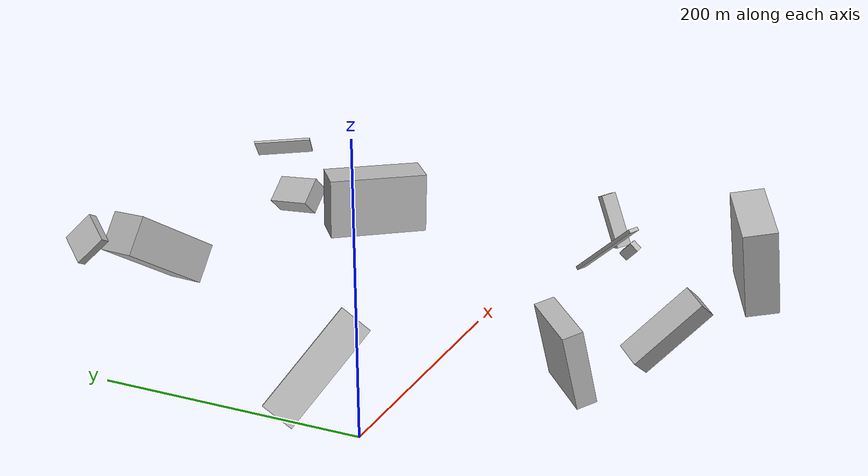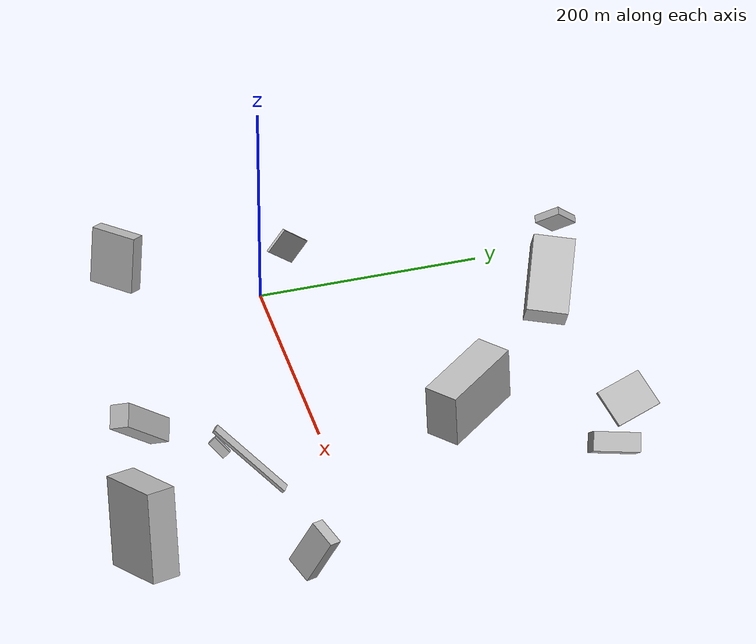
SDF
<sdf version="1.6">
 <world name="default">
  <scene>
   <sky><clouds><speed>12</speed></clouds></sky>
   <ambient>0.4 0.4 0.4 1</ambient>
   <background>0.7 0.7 0.7 1</background>
   <shadows>1</shadows>
  </scene>
  <gravity>0 0 -9.8066</gravity>
  <magnetic_field>6e-06 2.3e-05 -4.2e-05</magnetic_field>
  <physics default="0" name="default_physics" type="ode">
   <ode>
    <solver>
     <type>quick</type>
     <iters>10</iters>
     <sor>1.0</sor>
     <use_dynamic_moi_rescaling>0</use_dynamic_moi_rescaling>
    </solver>
    <constraints>
     <cfm>0</cfm>
     <erp>0.2</erp>
     <contact_max_correcting_vel>100</contact_max_correcting_vel>
     <contact_surface_layer>0.001</contact_surface_layer>
    </constraints>
   </ode>
   <max_step_size>0.004</max_step_size>
   <real_time_factor>1</real_time_factor>
   <real_time_update_rate>250</real_time_update_rate>
  </physics>
  <light name="sun" type="directional">
   <pose>0 0 10 0 0 0</pose>
   <diffuse>0.8 0.8 0.8 1</diffuse>
   <specular>0.2 0.2 0.2 1</specular>
   <attenuation>
    <range>1000</range>
    <constant>0.9</constant>
    <linear>0.01</linear>
    <quadratic>0.001</quadratic>
   </attenuation>
   <direction>-0.5 0.1 -0.9</direction>
  </light>
  <model name="building_1">
   <static>0</static>
   <pose>261.0532818106279 -97.06716796131728 49.152921074668924 0.46271892647554796 0.7313742921543289 -1.5891109131579264</pose>
   <link name="link">
    <gravity>0</gravity>
    <pose>0 0 9.0 0 0 0</pose>
    <collision name="collision"><geometry><box><size>8 5 18</size></box></geometry></collision>
    <visual name="visual">
     <cast_shadows>0</cast_shadows>
     <geometry><box><size>8 5 18</size></box></geometry>
     <material>
      <script>
       <uri>model://HANNAS_wall/materials/scripts</uri>
       <uri>model://HANNAS_wall/materials/textures</uri>
       <name>vrc/HANNAS_wall</name>
      </script>
     </material>
    </visual>
   </link>
  </model>
  <model name="building_2">
   <static>0</static>
   <pose>183.8523652657264 -146.4565754573307 33.54002334796078 2.1015560758846905 0.6456084155576165 -0.29585756632660004</pose>
   <link name="link">
    <gravity>0</gravity>
    <pose>0 0 9.5 0 0 0</pose>
    <collision name="collision"><geometry><box><size>21 63 19</size></box></geometry></collision>
    <visual name="visual">
     <cast_shadows>0</cast_shadows>
     <geometry><box><size>21 63 19</size></box></geometry>
     <material>
      <script>
       <uri>model://HANNAS_wall/materials/scripts</uri>
       <uri>model://HANNAS_wall/materials/textures</uri>
       <name>vrc/HANNAS_wall</name>
      </script>
     </material>
    </visual>
   </link>
  </model>
  <model name="building_3">
   <static>0</static>
   <pose>274.50471162859907 -81.59909930939081 48.3006438129832 1.655091471928892 -0.6892903303292917 -2.1557182792686307</pose>
   <link name="link">
    <gravity>0</gravity>
    <pose>0 0 4.5 0 0 0</pose>
    <collision name="collision"><geometry><box><size>80 3 9</size></box></geometry></collision>
    <visual name="visual">
     <cast_shadows>0</cast_shadows>
     <geometry><box><size>80 3 9</size></box></geometry>
     <material>
      <script>
       <uri>model://HANNAS_wall/materials/scripts</uri>
       <uri>model://HANNAS_wall/materials/textures</uri>
       <name>vrc/HANNAS_wall</name>
      </script>
     </material>
    </visual>
   </link>
  </model>
  <model name="building_4">
   <static>0</static>
   <pose>256.5279882417856 117.84041035682793 41.80239226071137 0.04828818196052225 0.010396745804359467 -0.8865695976050812</pose>
   <link name="link">
    <gravity>0</gravity>
    <pose>0 0 24.5 0 0 0</pose>
    <collision name="collision"><geometry><box><size>80 31 49</size></box></geometry></collision>
    <visual name="visual">
     <cast_shadows>0</cast_shadows>
     <geometry><box><size>80 31 49</size></box></geometry>
     <material>
      <script>
       <uri>model://HANNAS_wall/materials/scripts</uri>
       <uri>model://HANNAS_wall/materials/textures</uri>
       <name>vrc/HANNAS_wall</name>
      </script>
     </material>
    </visual>
   </link>
  </model>
  <model name="building_5">
   <static>0</static>
   <pose>311.0715373761568 -183.8086858216717 80.39025599812813 2.8505515326240576 0.158538676049885 1.9345369557171272</pose>
   <link name="link">
    <gravity>0</gravity>
    <pose>0 0 40.0 0 0 0</pose>
    <collision name="collision"><geometry><box><size>27 59 80</size></box></geometry></collision>
    <visual name="visual">
     <cast_shadows>0</cast_shadows>
     <geometry><box><size>27 59 80</size></box></geometry>
     <material>
      <script>
       <uri>model://HANNAS_wall/materials/scripts</uri>
       <uri>model://HANNAS_wall/materials/textures</uri>
       <name>vrc/HANNAS_wall</name>
      </script>
     </material>
    </visual>
   </link>
  </model>
  <model name="building_6">
   <static>0</static>
   <pose>306.46460510350397 261.6197978316137 79.57150900995535 1.5073718264793372 0.5957947650303866 0.44332322670773455</pose>
   <link name="link">
    <gravity>0</gravity>
    <pose>0 0 24.5 0 0 0</pose>
    <collision name="collision"><geometry><box><size>34 2 49</size></box></geometry></collision>
    <visual name="visual">
     <cast_shadows>0</cast_shadows>
     <geometry><box><size>34 2 49</size></box></geometry>
     <material>
      <script>
       <uri>model://HANNAS_wall/materials/scripts</uri>
       <uri>model://HANNAS_wall/materials/textures</uri>
       <name>vrc/HANNAS_wall</name>
      </script>
     </material>
    </visual>
   </link>
  </model>
  <model name="building_7">
   <static>0</static>
   <pose>323.32049299103915 248.32242938700904 33.718015736430175 -1.40238789442118 -0.8122976400122772 2.843115206661012</pose>
   <link name="link">
    <gravity>0</gravity>
    <pose>0 0 20.5 0 0 0</pose>
    <collision name="collision"><geometry><box><size>17 26 41</size></box></geometry></collision>
    <visual name="visual">
     <cast_shadows>0</cast_shadows>
     <geometry><box><size>17 26 41</size></box></geometry>
     <material>
      <script>
       <uri>model://HANNAS_wall/materials/scripts</uri>
       <uri>model://HANNAS_wall/materials/textures</uri>
       <name>vrc/HANNAS_wall</name>
      </script>
     </material>
    </visual>
   </link>
  </model>
  <model name="building_8">
   <static>0</static>
   <pose>105.2921482787058 234.565232949382 42.768581374931244 0.5825896486479932 0.11932024160610107 1.2523892184219458</pose>
   <link name="link">
    <gravity>0</gravity>
    <pose>0 0 15.5 0 0 0</pose>
    <collision name="collision"><geometry><box><size>37 70 31</size></box></geometry></collision>
    <visual name="visual">
     <cast_shadows>0</cast_shadows>
     <geometry><box><size>37 70 31</size></box></geometry>
     <material>
      <script>
       <uri>model://HANNAS_wall/materials/scripts</uri>
       <uri>model://HANNAS_wall/materials/textures</uri>
       <name>vrc/HANNAS_wall</name>
      </script>
     </material>
    </visual>
   </link>
  </model>
  <model name="building_9">
   <static>0</static>
   <pose>-2.012586922684612 18.351153623175698 38.83450258616968 0.42311186013007296 0.75558451186587 2.534397365562432</pose>
   <link name="link">
    <gravity>0</gravity>
    <pose>0 0 12.0 0 0 0</pose>
    <collision name="collision"><geometry><box><size>80 2 24</size></box></geometry></collision>
    <visual name="visual">
     <cast_shadows>0</cast_shadows>
     <geometry><box><size>80 2 24</size></box></geometry>
     <material>
      <script>
       <uri>model://HANNAS_wall/materials/scripts</uri>
       <uri>model://HANNAS_wall/materials/textures</uri>
       <name>vrc/HANNAS_wall</name>
      </script>
     </material>
    </visual>
   </link>
  </model>
  <model name="building_10">
   <static>0</static>
   <pose>56.277870361631976 255.59614089827016 79.17181640694542 -2.1710980544639624 0.5818854395086055 -2.0992435868837904</pose>
   <link name="link">
    <gravity>0</gravity>
    <pose>0 0 3.5 0 0 0</pose>
    <collision name="collision"><geometry><box><size>25 27 7</size></box></geometry></collision>
    <visual name="visual">
     <cast_shadows>0</cast_shadows>
     <geometry><box><size>25 27 7</size></box></geometry>
     <material>
      <script>
       <uri>model://HANNAS_wall/materials/scripts</uri>
       <uri>model://HANNAS_wall/materials/textures</uri>
       <name>vrc/HANNAS_wall</name>
      </script>
     </material>
    </visual>
   </link>
  </model>
  <model name="building_11">
   <static>0</static>
   <pose>6.930574882535698 -129.74028065763025 105.04921415354418 -3.0438179865467268 -0.258416010374168 -0.8623043136427396</pose>
   <link name="link">
    <gravity>0</gravity>
    <pose>0 0 25.5 0 0 0</pose>
    <collision name="collision"><geometry><box><size>13 44 51</size></box></geometry></collision>
    <visual name="visual">
     <cast_shadows>0</cast_shadows>
     <geometry><box><size>13 44 51</size></box></geometry>
     <material>
      <script>
       <uri>model://HANNAS_wall/materials/scripts</uri>
       <uri>model://HANNAS_wall/materials/textures</uri>
       <name>vrc/HANNAS_wall</name>
      </script>
     </material>
    </visual>
   </link>
  </model>
  <model name="building_12">
   <static>0</static>
   <pose>377.84817729362993 -47.755520567115035 30.45215887938647 1.2834008292770056 0.3514497587142851 0.4327511628249786</pose>
   <link name="link">
    <gravity>0</gravity>
    <pose>0 0 6.0 0 0 0</pose>
    <collision name="collision"><geometry><box><size>25 47 12</size></box></geometry></collision>
    <visual name="visual">
     <cast_shadows>0</cast_shadows>
     <geometry><box><size>25 47 12</size></box></geometry>
     <material>
      <script>
       <uri>model://HANNAS_wall/materials/scripts</uri>
       <uri>model://HANNAS_wall/materials/textures</uri>
       <name>vrc/HANNAS_wall</name>
      </script>
     </material>
    </visual>
   </link>
  </model>
 </world>
</sdf>
